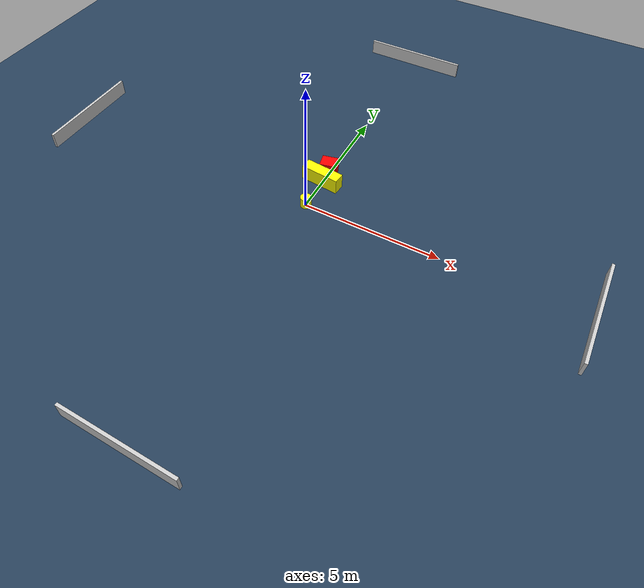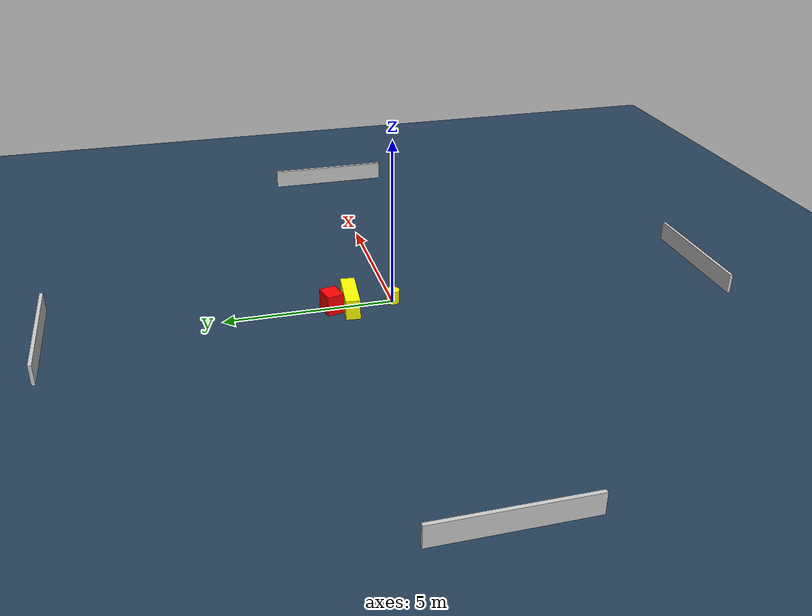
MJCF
<?xml version="1.0" ?>
<mujoco model="generated_environment">
  <option timestep="0.01" integrator="RK4" cone="elliptic"/>
  <default>
    <geom density="1"/>
  </default>
  <asset>
    <texture builtin="gradient" height="3072" name="skybox" rgb1="0.3 0.5 0.7" rgb2="0 0 0" type="skybox" width="512"/>
    <texture builtin="checker" height="300" name="groundplane" rgb1="0.2 0.3 0.4" rgb2="0.1 0.2 0.3" type="2d" width="300"/>
    <material name="groundplane" reflectance="0.2" texrepeat="5 5" texture="groundplane"/>
  </asset>
  <worldbody>
    <light dir="0 0 -1" directional="true" pos="0 0 1.5"/>
    <geom condim="3" friction="0.5 0.005 0.001" material="groundplane" name="floor" pos="0 0 0" size="0 0 0.05" type="plane"/>
    <body name="walls">
      <geom name="wall_1" condim="4" pos="-10.0 0.0 0.3" rgba="0.800000011920929 0.800000011920929 0.800000011920929 1.0" size="0.05 2.0 0.3" type="box"/>
      <geom name="wall_2" condim="4" pos="10.0 0.0 0.3" rgba="0.800000011920929 0.800000011920929 0.800000011920929 1.0" size="0.05 2.0 0.3" type="box"/>
      <geom name="wall_3" condim="4" pos="0.0 -10.0 0.3" rgba="0.800000011920929 0.800000011920929 0.800000011920929 1.0" size="2.0 0.05 0.3" type="box"/>
      <geom name="wall_4" condim="4" pos="0.0 10.0 0.3" rgba="0.800000011920929 0.800000011920929 0.800000011920929 1.0" size="2.0 0.05 0.3" type="box"/>
    </body>
    <body name="robot">
      <joint name="joint_x" type="slide" pos="0 0 0" axis="1 0 0"/>
      <joint name="joint_y" type="slide" pos="0 0 0" axis="0 1 0"/>
      <geom name="robot" type="cylinder" pos="0.0 0.0 0.2" size="0.2 0.2 0.0" mass="5.0" friction="1.0 0.005 0.0001" condim="4" rgba="1.0 1.0 0.0 1.0"/>
    </body>
    <body name="obstacle_1_movable">
      <geom name="obstacle_1_movable" condim="4" pos="-0.03510625167494048 1.2949875059248184 0.3" euler="0 0 174.54428399275093" friction="0.0 0.005 0.001" rgba="1.0 1.0 0.0 1.0" size="0.7240915678489914 0.21325970832990368 0.3" type="box" mass="0.1"/>
      <joint type="free"/>
    </body>
    <body name="obstacle_2_static">
      <geom name="obstacle_2_static" condim="4" pos="-0.042319202999315374 1.8480915612209972 0.3" euler="0 0 103.26174375425973" friction="0.0 0.005 0.001" rgba="1.0 0.0 0.0 1.0" size="0.25193610190556415 0.305420646058593 0.3" type="box"/>
    </body>
  </worldbody>
  <actuator>
    <motor name="actuator_x" joint="joint_x" gear="1" ctrlrange="-1 1"/>
    <motor name="actuator_y" joint="joint_y" gear="1" ctrlrange="-1 1"/>
  </actuator>
</mujoco>
